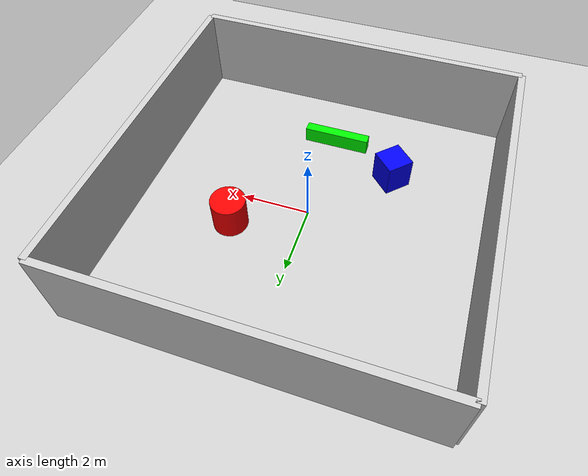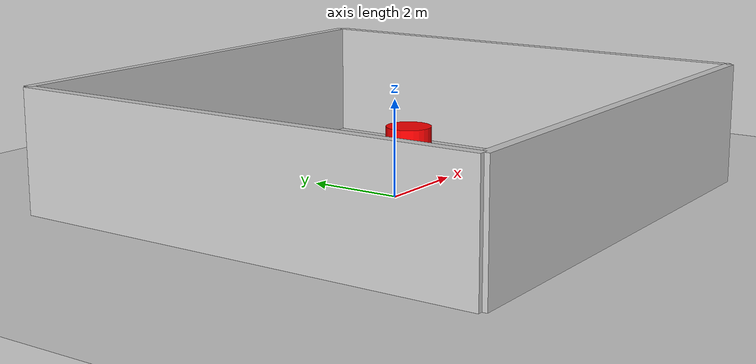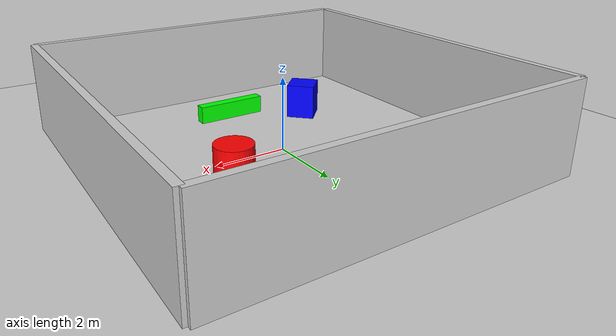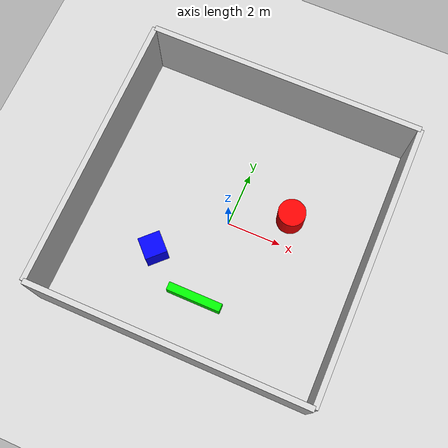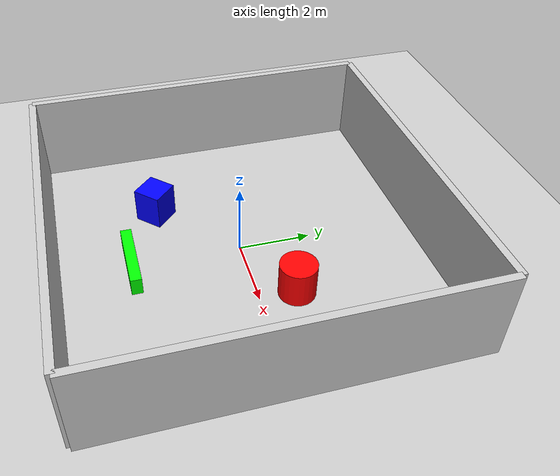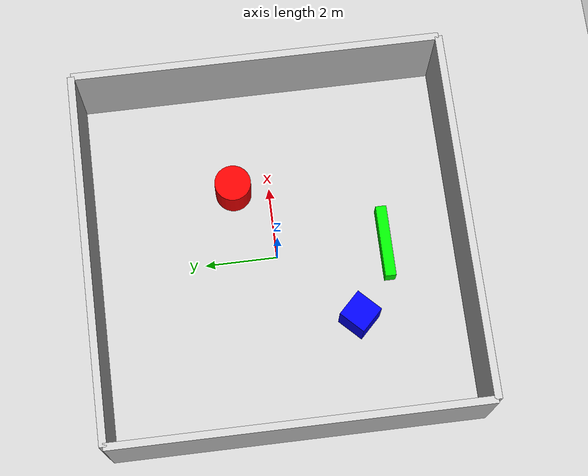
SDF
<?xml version="1.0"?>
<sdf version="1.6">
  <world name="humanoid_navigation">
    <!-- 物理引擎参数 -->
    <physics type="ode">
      <max_step_size>0.001</max_step_size>
      <real_time_factor>1.0</real_time_factor>
      <real_time_update_rate>1000</real_time_update_rate>
      <ode>
        <solver>
          <type>quick</type>
          <iters>50</iters>
          <precon_iters>0</precon_iters>
          <sor>1.4</sor>
          <use_dynamic_moi_rescaling>1</use_dynamic_moi_rescaling>
        </solver>
        <constraints>
          <cfm>0.00001</cfm>
          <erp>0.2</erp>
          <contact_surface_layer>0.001</contact_surface_layer>
          <contact_max_correcting_vel>100.0</contact_max_correcting_vel>
        </constraints>
      </ode>
    </physics>

    <!-- 环境光源 -->

    <!-- 地面 -->
    <include>
      <uri>model://ground_plane</uri>
      <name>ground</name>
    </include>

    <!-- 房间墙壁 -->
    <model name="room">
      <static>true</static>
      <link name="walls">
        <!-- 北墙 -->
        <collision name="north_wall_collision">
          <geometry>
            <box>
              <size>10.0 0.2 2.5</size>
            </box>
          </geometry>
          <pose>0 5.0 1.25 0 0 0</pose>
        </collision>
        <visual name="north_wall_visual">
          <geometry>
            <box>
              <size>10.0 0.2 2.5</size>
            </box>
          </geometry>
          <pose>0 5.0 1.25 0 0 0</pose>
          <material>
            <ambient>0.8 0.8 0.8 1</ambient>
            <diffuse>0.8 0.8 0.8 1</diffuse>
          </material>
        </visual>

        <!-- 南墙 -->
        <collision name="south_wall_collision">
          <geometry>
            <box>
              <size>10.0 0.2 2.5</size>
            </box>
          </geometry>
          <pose>0 -5.0 1.25 0 0 0</pose>
        </collision>
        <visual name="south_wall_visual">
          <geometry>
            <box>
              <size>10.0 0.2 2.5</size>
            </box>
          </geometry>
          <pose>0 -5.0 1.25 0 0 0</pose>
          <material>
            <ambient>0.8 0.8 0.8 1</ambient>
            <diffuse>0.8 0.8 0.8 1</diffuse>
          </material>
        </visual>

        <!-- 东墙 -->
        <collision name="east_wall_collision">
          <geometry>
            <box>
              <size>0.2 10.0 2.5</size>
            </box>
          </geometry>
          <pose>5.0 0 1.25 0 0 0</pose>
        </collision>
        <visual name="east_wall_visual">
          <geometry>
            <box>
              <size>0.2 10.0 2.5</size>
            </box>
          </geometry>
          <pose>5.0 0 1.25 0 0 0</pose>
          <material>
            <ambient>0.8 0.8 0.8 1</ambient>
            <diffuse>0.8 0.8 0.8 1</diffuse>
          </material>
        </visual>

        <!-- 西墙 -->
        <collision name="west_wall_collision">
          <geometry>
            <box>
              <size>0.2 10.0 2.5</size>
            </box>
          </geometry>
          <pose>-5.0 0 1.25 0 0 0</pose>
        </collision>
        <visual name="west_wall_visual">
          <geometry>
            <box>
              <size>0.2 10.0 2.5</size>
            </box>
          </geometry>
          <pose>-5.0 0 1.25 0 0 0</pose>
          <material>
            <ambient>0.8 0.8 0.8 1</ambient>
            <diffuse>0.8 0.8 0.8 1</diffuse>
          </material>
        </visual>

        <!-- 内部障碍物1 - 圆柱体 -->
        <collision name="obstacle1_collision">
          <geometry>
            <cylinder>
              <radius>0.5</radius>
              <length>1.0</length>
            </cylinder>
          </geometry>
          <pose>2.0 1.0 0.5 0 0 0</pose>
        </collision>
        <visual name="obstacle1_visual">
          <geometry>
            <cylinder>
              <radius>0.5</radius>
              <length>1.0</length>
            </cylinder>
          </geometry>
          <pose>2.0 1.0 0.5 0 0 0</pose>
          <material>
            <ambient>1.0 0.0 0.0 1</ambient>
            <diffuse>1.0 0.0 0.0 1</diffuse>
          </material>
        </visual>

        <!-- 内部障碍物2 - 立方体 -->
        <collision name="obstacle2_collision">
          <geometry>
            <box>
              <size>0.8 0.8 1.0</size>
            </box>
          </geometry>
          <pose>-2.0 -2.0 0.5 0 0 0.785</pose> <!-- 45度旋转 -->
        </collision>
        <visual name="obstacle2_visual">
          <geometry>
            <box>
              <size>0.8 0.8 1.0</size>
            </box>
          </geometry>
          <pose>-2.0 -2.0 0.5 0 0 0.785</pose>
          <material>
            <ambient>0.0 0.0 1.0 1</ambient>
            <diffuse>0.0 0.0 1.0 1</diffuse>
          </material>
        </visual>

        <!-- 内部障碍物3 - 长方体 -->
        <collision name="obstacle3_collision">
          <geometry>
            <box>
              <size>2.0 0.3 0.5</size>
            </box>
          </geometry>
          <pose>0.0 -3.0 0.25 0 0 0</pose>
        </collision>
        <visual name="obstacle3_visual">
          <geometry>
            <box>
              <size>2.0 0.3 0.5</size>
            </box>
          </geometry>
          <pose>0.0 -3.0 0.25 0 0 0</pose>
          <material>
            <ambient>0.0 1.0 0.0 1</ambient>
            <diffuse>0.0 1.0 0.0 1</diffuse>
          </material>
        </visual>
      </link>
    </model>

    <!-- 环境光照控制 -->
    <light type="directional" name="sun">
      <cast_shadows>true</cast_shadows>
      <pose>0 0 10 0 0 0</pose>
      <diffuse>0.8 0.8 0.8 1</diffuse>
      <specular>0.2 0.2 0.2 1</specular>
      <attenuation>
        <range>1000</range>
        <constant>0.9</constant>
        <linear>0.01</linear>
        <quadratic>0.001</quadratic>
      </attenuation>
      <direction>-0.5 0.1 -0.9</direction>
    </light>

    <!-- 雾效设置 -->
    <fog>
      <type>linear</type>
      <color>0.8 0.8 0.8</color>
      <start>5</start>
      <end>20</end>
    </fog>

    <!-- 物理碰撞调试 -->
    <gui fullscreen="0">
      <camera name="user_camera">
        <pose>0 0 10 0 0 0</pose>
        <view_controller>orbit</view_controller>
        <projection_type>perspective</projection_type>
      </camera>
    </gui>
  </world>
</sdf>
